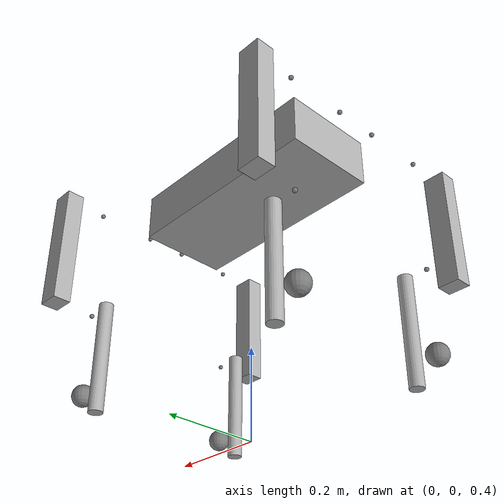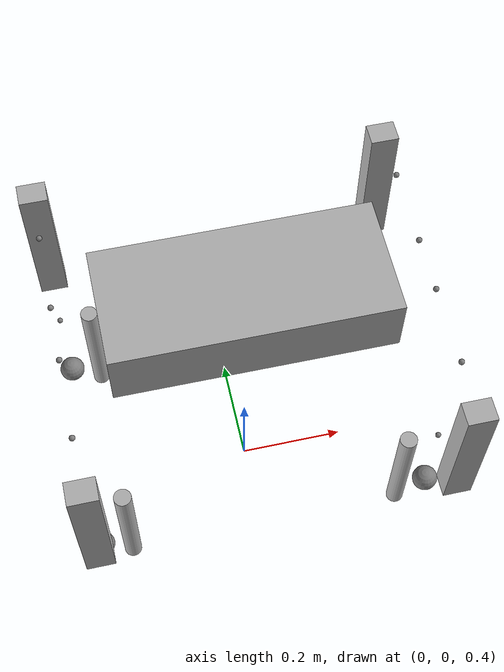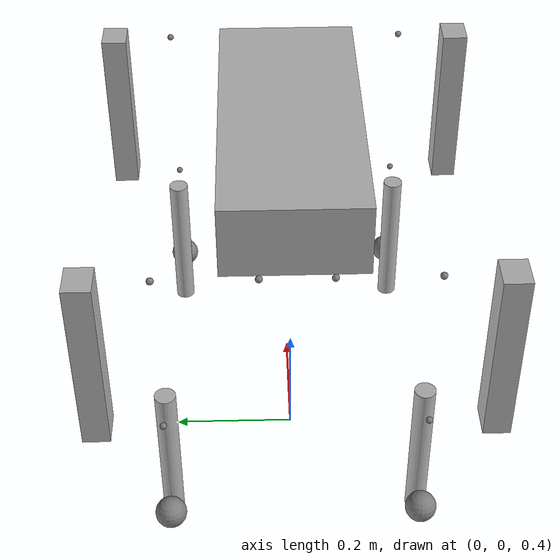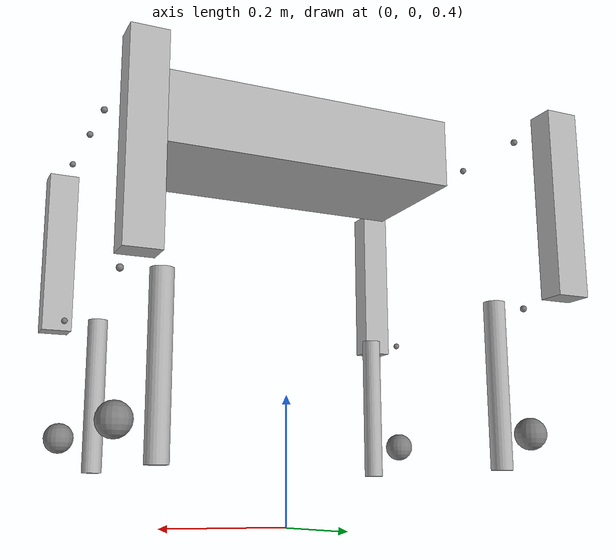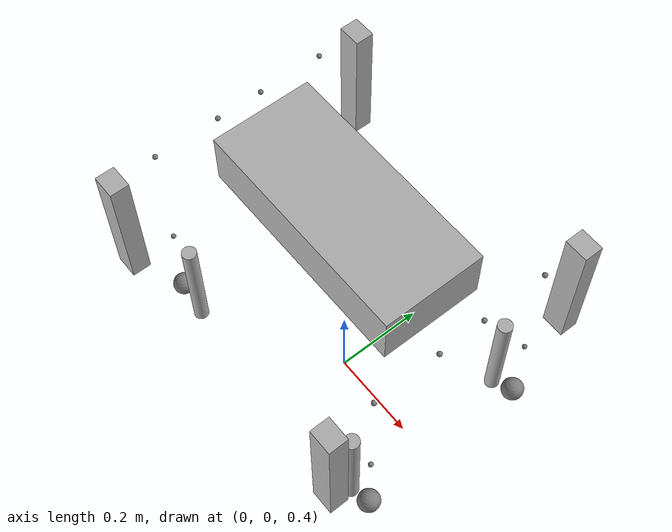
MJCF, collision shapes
<!--Please note the -->
<mujoco model="sirius_mid_v3">
    <compiler angle="radian" meshdir="../assets" autolimits="true" eulerseq="ZYX"/>
    <option cone="elliptic" impratio="100" integrator="implicitfast" timestep="0.001"/>

    <visual>
        <global ellipsoidinertia="true"/>
    </visual>
    <!--    mujoco default properties-->
    <default>
        <default class="sirius">
            <geom friction="0.6" margin="0.00001" condim="1"/>
            <!--            armature: inertia of rotors; joint global axis 0.0000097913844*gr^2-->
            <joint axis="0 1 0" damping="0.01" armature="0.0092" frictionloss="0.01" actuatorfrcrange="-43 43"/>
            <default class="abad">
                <!--                joint range-->
                <joint pos="0 0 0" axis="1 0 0" range="-0.785398 0.785398"/>
                <!--                control position -->
                <motor ctrlrange="-35 35"/>
            </default>
            <default class="hip">
                <joint range="-1.57 1.57"/>
                <motor ctrlrange="-35 35"/>
            </default>
            <default class="knee">
                <joint range="-2.9 2.9"/>
                <!--                output torque range, knees with larger gear ratio-->
                <motor forcerange="-86 86" ctrlrange="-86 86"/>
            </default>

            <default class="knee_f">
                <joint range="-3.15159 1.17453"/>
                <!--                output torque range, knees with larger gear ratio-->
                <motor forcerange="-45 45" ctrlrange="-45 45"/>
            </default>

            <default class="knee_r">
                <joint range="-1.17453 3.15159"/>
                <!--                output torque range, knees with larger gear ratio-->
                <motor forcerange="-45 45" ctrlrange="-45 45"/>
            </default>
            <!--            visual mesh for sensors and markers-->
            <default class="visual">
                <geom type="mesh" contype="0" conaffinity="0" group="2"/>
            </default>
            <!--            build collision model-->
            <default class="collision">
                <geom group="3" type="capsule"/>
                <default class="foot">
                    <geom type="sphere" size="0.024" priority="1" condim="6"
                          friction="0.5 0.02 0.01"
                          pos="0 0 -0.191"/>
                </default>
                <!--                body is based on local frame-->
                <default class="thigh_fl1">
                    <geom size="0.048 0.05685" pos="0 0.05735 0" quat="1 1 0 0" type="cylinder"/>
                </default>
                <default class="thigh_fl2">
                    <geom size="0.025 0.08295" pos="0 0.1282 -0.10795" quat="1 0 0 0" type="capsule"/>
                </default>

                <default class="thigh_fr1">
                    <geom size="0.048 0.05685" pos="0 -0.05735 0" quat="1 1 0 0" type="cylinder"/>
                </default>
                <default class="thigh_fr2">
                    <geom size="0.025 0.08295" pos="0 -0.1282 -0.10795" quat="1 0 0 0" type="capsule"/>
                </default>

                <default class="thigh_rl1">
                    <geom size="0.048 0.05685" pos="0 0.05735 0" quat="1 1 0 0" type="cylinder"/>
                </default>
                <default class="thigh_rl2">
                    <geom size="0.025 0.08295" pos="0 0.1282 -0.10795" quat="1 0 0 0" type="capsule"/>
                </default>

                <default class="thigh_rr1">
                    <geom size="0.048 0.05685" pos="0 -0.05735 0" quat="1 1 0 0" type="cylinder"/>
                </default>
                <default class="thigh_rr2">
                    <geom size="0.025 0.08295" pos="0 -0.1282 -0.10795" quat="1 0 0 0" type="capsule"/>
                </default>

                <default class="calf">
                    <geom size="0.01 0.0855" pos="0 0 -0.0955" quat="1 0 0 0" type="capsule"/>
                </default>
            </default>
        </default>
    </default>

    <asset>
        <material name="sirius" rgba="0.1 0.1 0.1 1"/>
        <mesh class="sirius" file="base_link.obj"/>
        <mesh class="sirius" file="difference_fr.obj"/>
        <mesh class="sirius" file="thigh_fr.obj"/>
        <mesh class="sirius" file="shank_fr.obj"/>
        <mesh class="sirius" file="difference_fl.obj"/>
        <mesh class="sirius" file="thigh_fl.obj"/>
        <mesh class="sirius" file="shank_fl.obj"/>
        <mesh class="sirius" file="difference_br.obj"/>
        <mesh class="sirius" file="thigh_br.obj"/>
        <mesh class="sirius" file="shank_br.obj"/>
        <mesh class="sirius" file="difference_bl.obj"/>
        <mesh class="sirius" file="thigh_bl.obj"/>
        <mesh class="sirius" file="shank_bl.obj"/>
    </asset>

    <worldbody>
        <body name="base_link" pos="0 0 1.0" childclass="sirius">
            <freejoint/>
            <inertial pos="0.0446334 0.0002693 -0.0071156" mass="12.149" diaginertia="0.048576 0.75312 0.75287"/>
            <geom size="0.241 0.106 0.056" type="box" rgba="0.69804 0.69804 0.69804 1" class='collision'/>
            <geom pos="0 0 0.01" quat="1 0 0 0" rgba="0.807843 0.843137 0.905882 1" mesh="base_link" class="visual" />
            <site name="imu" pos="0 0 0"/>

            <body name="FR_hip" pos="0.314 -0.050 0" quat="1 0 0 0">
                <inertial pos="-2.74871e-07 -0.00678503 -7.28955e-05" quat="-0.00504962 0.707089 -0.00507879 0.707089" mass="1.83992" diaginertia="0.002488 0.00218033 0.00159669"/>
                <site name="fr_abad_torque_site" pos="0 0 0"/>
                <joint class="abad" name="FR_hip_joint"/>
                <geom type="mesh" class='visual' density="0" rgba="0.698039 0.698039 0.698039 1" mesh="difference_fl"/>
                <body name="FR_thigh" pos="0 -0.1408 0" quat="1 0 0 0">
                    <inertial pos="-7.79362e-06 -0.0767249 -0.0853108" quat="0.997528 -0.0688902 -0.001386 -0.0137925" mass="1.84492" diaginertia="0.0200734 0.019769 0.00221108"/>
                    <site name="fr_hip_torque_site" pos="0 0 0"/>
                    <joint class="hip" name="FR_thigh_joint"/>
                    <geom type="mesh" class='visual' density="0" rgba="0.698039 0.698039 0.698039 1" mesh="thigh_fl"/>
                    <geom size="0.025 0.02 0.14" pos="0 -0.093 -0.135" type="box" rgba="0.698039 0.698039 0.698039 1"/>
                    <body name="FR_calf" pos="0.0 0.0 -0.272">
                        <inertial pos="-0.041592 -8.92773e-06 -0.12216" quat="0.702889 0.0773604 0.0774288 0.702828" mass="0.523946" diaginertia="0.011804 0.0116286 0.00410657"/>
                        <joint class="knee_f" name="FR_calf_joint"/>
                        <site name="fr_knee_torque_site" pos="0 0 0"/>
                        <geom type="mesh" class='visual' density="0" rgba="0.698039 0.698039 0.698039 1" mesh="shank_fl"/>
                        <geom size="0.016 0.125" pos="-0.055 0 -0.12" type="cylinder" rgba="0.698039 0.698039 0.698039 1"/>
                        <geom name="FR_foot" class="foot" />
                        <body name="FR_foot" pos="-0.07 0 -0.252" />
                    </body>
                </body>
            </body>

            <body name="FL_hip" pos="0.314 0.050 0" quat="1 0 0 0">
                <inertial pos="2.76256e-07 0.00678503 -7.2895e-05" quat="0.00507876 0.707089 0.00504962 0.707089" mass="1.83992" diaginertia="0.002488 0.00218033 0.00159669"/>
                <joint class="abad" name="FL_hip_joint"/>
                <site name="fl_abad_torque_site" pos="0 0 0"/>
                <geom class="visual" mesh="difference_fr" quat="1 0 0 0" rgba="0.152941176 0.160784314 0.196078431 1"/>
                <body name="FL_thigh" pos="0 0.1408 0" quat="1 0 0 0">
                    <inertial pos="7.8005e-06 0.0767249 -0.0853108" quat="0.997528 0.0688902 0.00138607 -0.0137933" mass="1.84492" diaginertia="0.0200734 0.019769 0.00221108"/>
                    <joint class="hip" name="FL_thigh_joint"/>
                    <site name="fl_hip_torque_site" pos="0 0 0"/>
                    <geom type="mesh"  density="0" rgba="0.698039 0.698039 0.698039 1" mesh="thigh_fr" class = 'visual'/>
                    <geom size="0.025 0.02 0.14" pos="0 0.093 -0.135" type="box" rgba="0.698039 0.698039 0.698039 1" class='collision'/>
                    <body name="FL_calf" pos="0.0 0.0 -0.272">
                        <inertial pos="-0.041592 -8.92773e-06 -0.12216" quat="0.702889 0.0773604 0.0774288 0.702828" mass="0.523946" diaginertia="0.011804 0.0116286 0.00410657"/>
                        <joint class="knee_f" name="FL_calf_joint"/>
                        <site name="fl_knee_torque_site" pos="0 0 0"/>
                        <geom type="mesh"  density="0" rgba="0.698039 0.698039 0.698039 1" mesh="shank_fr" class = 'visual'/>
                        <geom size="0.016 0.125" pos="-0.055 0 -0.12" type="cylinder" rgba="0.698039 0.698039 0.698039 1" class='collision'/>
                        <geom name="FL_foot" class="foot" />
                        <body name="FL_foot" pos="-0.07 0 -0.252" />
                    </body>
                </body>
            </body>

            <body name="RR_hip" pos="-0.314 -0.050 0" quat="1 0 0 0">
                <inertial pos="2.76256e-07 0.00678503 -7.2895e-05" quat="0.00507876 0.707089 0.00504962 0.707089" mass="1.83992" diaginertia="0.002488 0.00218033 0.00159669"/>
                <joint class="abad" name="RR_hip_joint"/>
                <site name="rr_abad_torque_site" pos="0 0 0"/>
                <geom type="mesh" class='visual' density="0" rgba="1 1 1 1" mesh="difference_bl"/>
                <body name="RR_thigh" pos="0 -0.1408 0">
                    <inertial pos="-7.79362e-06 -0.0767249 -0.0853108" quat="0.997528 -0.0688902 -0.001386 -0.0137925" mass="1.84492" diaginertia="0.0200734 0.019769 0.00221108"/>
                    <joint class="hip" name="RR_thigh_joint"/>
                    <site name="rr_hip_torque_site" pos="0 0 0"/>
                    <geom type="mesh" class='visual' density="0" rgba="0.698039 0.698039 0.698039 1" mesh="thigh_bl"/>
                    <geom size="0.025 0.02 0.14" pos="0 -0.093 -0.135" type="box" rgba="0.698039 0.698039 0.698039 1"/>
                    <body name="RR_calf" pos="0.0 0.0 -0.272">
                        <inertial pos="0.041592 8.92773e-06 -0.12216" quat="0.702889 -0.0773604 -0.0774288 0.702828" mass="0.523946" diaginertia="0.011804 0.0116286 0.00410657"/>
                        <joint class="knee_r" name="RR_calf_joint"/>
                        <site name="rr_knee_torque_site" pos="0 0 0"/>
                        <geom type="mesh" class='visual' density="0" rgba="0.698039 0.698039 0.698039 1" mesh="shank_bl"/>
                        <geom size="0.016 0.125" pos="0.055 0 -0.12" type="cylinder" rgba="0.698039 0.698039 0.698039 1"/>
                        <geom name="RR_foot" class="foot" />
                        <body name="RR_foot" pos="0.07 0 -0.252" />
                    </body>
                </body>
            </body>

            <body name="RL_hip" pos="-0.314 0.050 0" quat="1 0 0 0">
                <inertial pos="2.76256e-07 0.00678503 -7.2895e-05" quat="0.00507876 0.707089 0.00504962 0.707089" mass="1.83992" diaginertia="0.002488 0.00218033 0.00159669"/>
                <joint class="abad" name="RL_hip_joint"/>
                <site name="rl_abad_torque_site" pos="0 0 0"/>
                <geom type="mesh" class='visual' density="0" rgba="0.698039 0.698039 0.698039 1" mesh="difference_br"/>
                <body name="RL_thigh" pos="0 0.1408 0" quat="1 0 0 0">
                    <inertial pos="7.8005e-06 0.0767249 -0.0853108" quat="0.997528 0.0688902 0.00138607 -0.0137933" mass="1.84492" diaginertia="0.0200734 0.019769 0.00221108"/>
                    <joint class="hip" name="RL_thigh_joint"/>
                    <site name="rl_hip_torque_site" pos="0 0 0"/>
                    <geom type="mesh" class='visual' density="0" rgba="0.698039 0.698039 0.698039 1" mesh="thigh_br"/>
                    <geom size="0.025 0.02 0.14" pos="0 0.093 -0.135" type="box" rgba="0.698039 0.698039 0.698039 1"/>
                    <body name="RL_calf" pos="0.0 0.0 -0.272">
                        <inertial pos="0.041592 8.92773e-06 -0.12216" quat="0.702889 -0.0773604 -0.0774288 0.702828" mass="0.523946" diaginertia="0.011804 0.0116286 0.00410657"/>
                        <joint class="knee_r" name="RL_calf_joint"/>
                        <site name="rl_knee_torque_site" pos="0 0 0"/>
                        <geom type="mesh" class='visual' density="0" rgba="0.698039 0.698039 0.698039 1" mesh="shank_br"/>
                        <geom size="0.016 0.125" pos="0.055 0 -0.12" type="cylinder" rgba="0.698039 0.698039 0.698039 1" />
                        <geom name="RL_foot" class="foot" />
                        <body name="RL_foot" pos="0.07 0 -0.252" />
                    </body>
                </body>
            </body>
        </body>
    </worldbody>

    <actuator>
        <motor class="abad" name="FR_hip_joint" joint="FR_hip_joint" />
        <motor class="hip" name="FR_thigh_joint" joint="FR_thigh_joint" />
        <motor class="knee" name="FR_calf_joint" joint="FR_calf_joint" />
        <motor class="abad" name="FL_hip_joint" joint="FL_hip_joint" />
        <motor class="hip" name="FL_thigh_joint" joint="FL_thigh_joint" />
        <motor class="knee" name="FL_calf_joint" joint="FL_calf_joint" />
        <motor class="abad" name="RR_hip_joint" joint="RR_hip_joint" />
        <motor class="hip" name="RR_thigh_joint" joint="RR_thigh_joint" />
        <motor class="knee" name="RR_calf_joint" joint="RR_calf_joint" />
        <motor class="abad" name="RL_hip_joint" joint="RL_hip_joint" />
        <motor class="hip" name="RL_thigh_joint" joint="RL_thigh_joint" />
        <motor class="knee" name="RL_calf_joint" joint="RL_calf_joint" />
    </actuator>

    <sensor>
        <gyro name="imu_gyro" site="imu"/>
        <framequat name="imu_quat" objtype="site" objname="imu"/>
        <accelerometer name="imu_acc" site="imu"/>

        <jointpos name="FR_hip_pos" joint="FR_hip_joint" />
        <jointpos name="FR_thigh_pos" joint="FR_thigh_joint" />
        <jointpos name="FR_calf_pos" joint="FR_calf_joint" />
        <jointpos name="FL_hip_pos" joint="FL_hip_joint" />
        <jointpos name="FL_thigh_pos" joint="FL_thigh_joint" />
        <jointpos name="FL_calf_pos" joint="FL_calf_joint" />
        <jointpos name="RR_hip_pos" joint="RR_hip_joint" />
        <jointpos name="RR_thigh_pos" joint="RR_thigh_joint" />
        <jointpos name="RR_calf_pos" joint="RR_calf_joint" />
        <jointpos name="RL_hip_pos" joint="RL_hip_joint" />
        <jointpos name="RL_thigh_pos" joint="RL_thigh_joint" />
        <jointpos name="RL_calf_pos" joint="RL_calf_joint" />

        <jointvel name="FR_hip_vel" joint="FR_hip_joint" />
        <jointvel name="FR_thigh_vel" joint="FR_thigh_joint" />
        <jointvel name="FR_calf_vel" joint="FR_calf_joint" />
        <jointvel name="FL_hip_vel" joint="FL_hip_joint" />
        <jointvel name="FL_thigh_vel" joint="FL_thigh_joint" />
        <jointvel name="FL_calf_vel" joint="FL_calf_joint" />
        <jointvel name="RR_hip_vel" joint="RR_hip_joint" />
        <jointvel name="RR_thigh_vel" joint="RR_thigh_joint" />
        <jointvel name="RR_calf_vel" joint="RR_calf_joint" />
        <jointvel name="RL_hip_vel" joint="RL_hip_joint" />
        <jointvel name="RL_thigh_vel" joint="RL_thigh_joint" />
        <jointvel name="RL_calf_vel" joint="RL_calf_joint" />

        <torque name="FR_hip_torque" site="fr_abad_torque_site"/>
        <torque name="FR_thigh_torque" site="fr_hip_torque_site"/>
        <torque name="FR_calf_torque" site="fr_knee_torque_site"/>

        <torque name="FL_hip_torque" site="fl_abad_torque_site"/>
        <torque name="FL_thigh_torque" site="fl_hip_torque_site"/>
        <torque name="FL_calf_torque" site="fl_knee_torque_site"/>

        <torque name="RR_hip_torque" site="rr_abad_torque_site"/>
        <torque name="RR_thigh_torque" site="rr_hip_torque_site"/>
        <torque name="RR_calf_torque" site="rr_knee_torque_site"/>

        <torque name="RL_hip_torque" site="rl_abad_torque_site"/>
        <torque name="RL_thigh_torque" site="rl_hip_torque_site"/>
        <torque name="RL_calf_torque" site="rl_knee_torque_site"/>
    </sensor>

    <keyframe>
        <key name="home"
             qpos="0 0 0.25 1 0 0 0 0.0 1.57086 -2.9 0 1.57086 -2.9 -0.0 -1.57086 2.9 0.0 -1.57086 2.9"/>
    </keyframe>
</mujoco>
